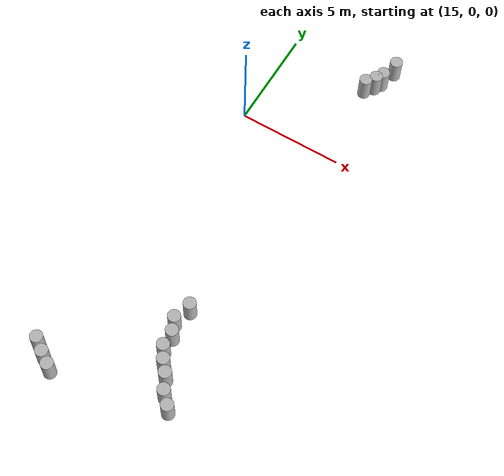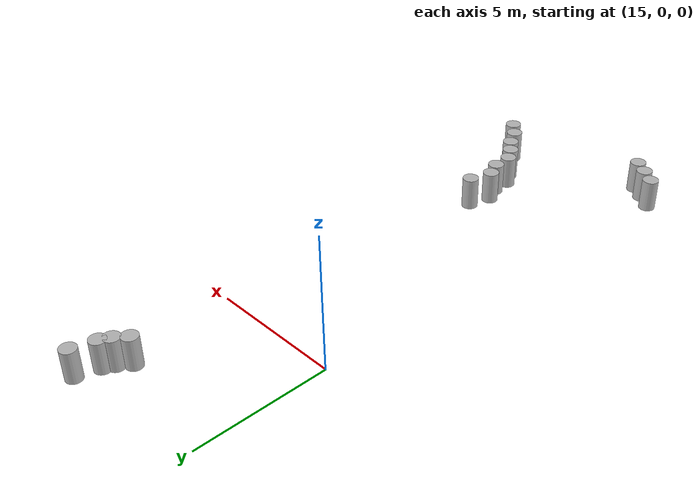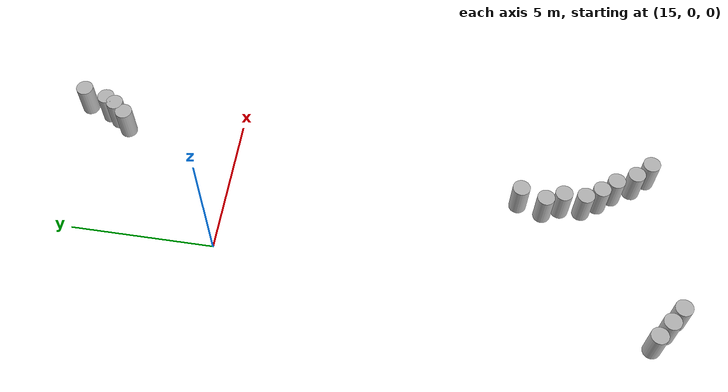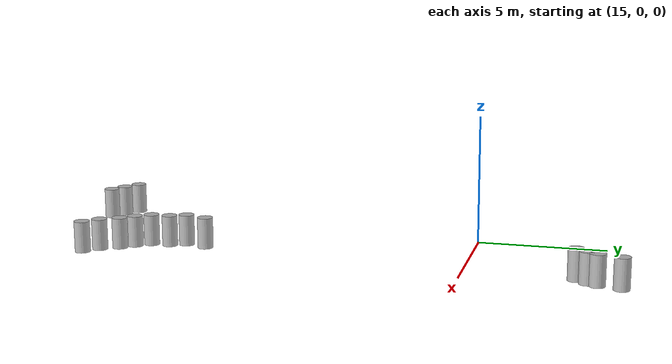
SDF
<sdf version="1.6">
 <world name="default">
  <model name="Construction Barrel_clone">
   <link name="link">
    <inertial>
     <pose>0 0 0.5 0 -0 0</pose>
     <mass>500</mass>
     <inertia><ixx>51.2096</ixx><iyy>51.2096</iyy><izz>25</izz><ixy>0</ixy><ixz>0</ixz><iyz>0</iyz></inertia>
    </inertial>
    <collision name="collision">
     <geometry><cylinder><radius>0.3</radius><length>1.2</length></cylinder></geometry>
    </collision>
    <visual name="visual">
     <geometry><cylinder><radius>0.3</radius><length>1.2</length></cylinder></geometry>
     <material>
      <script>
       <uri>model://construction_barrel/materials/scripts</uri>
       <uri>model://construction_barrel/materials/textures</uri>
       <name>construction_barrel/Image</name>
      </script>
     </material>
    </visual>
    <velocity_decay><linear>0</linear><angular>0</angular></velocity_decay>
   </link>
   <pose>13.4752 -14.8482 0.613748 0 -0 0</pose>
   <static>1</static>
  </model>
  <model name="Construction Barrel_clone_clone">
   <link name="link">
    <inertial>
     <pose>0 0 0.5 0 -0 0</pose>
     <mass>500</mass>
     <inertia><ixx>51.2096</ixx><iyy>51.2096</iyy><izz>25</izz><ixy>0</ixy><ixz>0</ixz><iyz>0</iyz></inertia>
    </inertial>
    <collision name="collision">
     <geometry><cylinder><radius>0.3</radius><length>1.2</length></cylinder></geometry>
    </collision>
    <visual name="visual">
     <geometry><cylinder><radius>0.3</radius><length>1.2</length></cylinder></geometry>
     <material>
      <script>
       <uri>model://construction_barrel/materials/scripts</uri>
       <uri>model://construction_barrel/materials/textures</uri>
       <name>construction_barrel/Image</name>
      </script>
     </material>
    </visual>
    <velocity_decay><linear>0</linear><angular>0</angular></velocity_decay>
   </link>
   <pose>14.0298 -15.2523 0.613748 0 -0 0</pose>
   <static>1</static>
  </model>
  <model name="Construction Barrel_clone_clone_clone">
   <link name="link">
    <inertial>
     <pose>0 0 0.5 0 -0 0</pose>
     <mass>500</mass>
     <inertia><ixx>51.2096</ixx><iyy>51.2096</iyy><izz>25</izz><ixy>0</ixy><ixz>0</ixz><iyz>0</iyz></inertia>
    </inertial>
    <collision name="collision">
     <geometry><cylinder><radius>0.3</radius><length>1.2</length></cylinder></geometry>
    </collision>
    <visual name="visual">
     <geometry><cylinder><radius>0.3</radius><length>1.2</length></cylinder></geometry>
     <material>
      <script>
       <uri>model://construction_barrel/materials/scripts</uri>
       <uri>model://construction_barrel/materials/textures</uri>
       <name>construction_barrel/Image</name>
      </script>
     </material>
    </visual>
    <velocity_decay><linear>0</linear><angular>0</angular></velocity_decay>
   </link>
   <pose>14.5642 -15.6098 0.613748 0 -0 0</pose>
   <static>1</static>
  </model>
  <model name="Construction Barrel_clone_clone_clone_9">
   <link name="link">
    <inertial>
     <pose>0 0 0.5 0 -0 0</pose>
     <mass>500</mass>
     <inertia><ixx>51.2096</ixx><iyy>51.2096</iyy><izz>25</izz><ixy>0</ixy><ixz>0</ixz><iyz>0</iyz></inertia>
    </inertial>
    <collision name="collision">
     <geometry><cylinder><radius>0.3</radius><length>1.2</length></cylinder></geometry>
    </collision>
    <visual name="visual">
     <geometry><cylinder><radius>0.3</radius><length>1.2</length></cylinder></geometry>
     <material>
      <script>
       <uri>model://construction_barrel/materials/scripts</uri>
       <uri>model://construction_barrel/materials/textures</uri>
       <name>construction_barrel/Image</name>
      </script>
     </material>
    </visual>
    <velocity_decay><linear>0</linear><angular>0</angular></velocity_decay>
   </link>
   <pose>19.8977 -14.5219 0.613748 0 -0 0</pose>
   <static>1</static>
  </model>
  <model name="Construction Barrel_clone_clone_clone_10">
   <link name="link">
    <inertial>
     <pose>0 0 0.5 0 -0 0</pose>
     <mass>500</mass>
     <inertia><ixx>51.2096</ixx><iyy>51.2096</iyy><izz>25</izz><ixy>0</ixy><ixz>0</ixz><iyz>0</iyz></inertia>
    </inertial>
    <collision name="collision">
     <geometry><cylinder><radius>0.3</radius><length>1.2</length></cylinder></geometry>
    </collision>
    <visual name="visual">
     <geometry><cylinder><radius>0.3</radius><length>1.2</length></cylinder></geometry>
     <material>
      <script>
       <uri>model://construction_barrel/materials/scripts</uri>
       <uri>model://construction_barrel/materials/textures</uri>
       <name>construction_barrel/Image</name>
      </script>
     </material>
    </visual>
    <velocity_decay><linear>0</linear><angular>0</angular></velocity_decay>
   </link>
   <pose>19.4094 -14.0229 0.613748 0 -0 0</pose>
   <static>1</static>
  </model>
  <model name="Construction Barrel_clone_clone_clone_11">
   <link name="link">
    <inertial>
     <pose>0 0 0.5 0 -0 0</pose>
     <mass>500</mass>
     <inertia><ixx>51.2096</ixx><iyy>51.2096</iyy><izz>25</izz><ixy>0</ixy><ixz>0</ixz><iyz>0</iyz></inertia>
    </inertial>
    <collision name="collision">
     <geometry><cylinder><radius>0.3</radius><length>1.2</length></cylinder></geometry>
    </collision>
    <visual name="visual">
     <geometry><cylinder><radius>0.3</radius><length>1.2</length></cylinder></geometry>
     <material>
      <script>
       <uri>model://construction_barrel/materials/scripts</uri>
       <uri>model://construction_barrel/materials/textures</uri>
       <name>construction_barrel/Image</name>
      </script>
     </material>
    </visual>
    <velocity_decay><linear>0</linear><angular>0</angular></velocity_decay>
   </link>
   <pose>19.038 -13.3491 0.613748 0 -0 0</pose>
   <static>1</static>
  </model>
  <model name="Construction Barrel_clone_clone_clone_12">
   <link name="link">
    <inertial>
     <pose>0 0 0.5 0 -0 0</pose>
     <mass>500</mass>
     <inertia><ixx>51.2096</ixx><iyy>51.2096</iyy><izz>25</izz><ixy>0</ixy><ixz>0</ixz><iyz>0</iyz></inertia>
    </inertial>
    <collision name="collision">
     <geometry><cylinder><radius>0.3</radius><length>1.2</length></cylinder></geometry>
    </collision>
    <visual name="visual">
     <geometry><cylinder><radius>0.3</radius><length>1.2</length></cylinder></geometry>
     <material>
      <script>
       <uri>model://construction_barrel/materials/scripts</uri>
       <uri>model://construction_barrel/materials/textures</uri>
       <name>construction_barrel/Image</name>
      </script>
     </material>
    </visual>
    <velocity_decay><linear>0</linear><angular>0</angular></velocity_decay>
   </link>
   <pose>18.6343 -12.8695 0.613748 0 -0 0</pose>
   <static>1</static>
  </model>
  <model name="Construction Barrel_clone_clone_clone_13">
   <link name="link">
    <inertial>
     <pose>0 0 0.5 0 -0 0</pose>
     <mass>500</mass>
     <inertia><ixx>51.2096</ixx><iyy>51.2096</iyy><izz>25</izz><ixy>0</ixy><ixz>0</ixz><iyz>0</iyz></inertia>
    </inertial>
    <collision name="collision">
     <geometry><cylinder><radius>0.3</radius><length>1.2</length></cylinder></geometry>
    </collision>
    <visual name="visual">
     <geometry><cylinder><radius>0.3</radius><length>1.2</length></cylinder></geometry>
     <material>
      <script>
       <uri>model://construction_barrel/materials/scripts</uri>
       <uri>model://construction_barrel/materials/textures</uri>
       <name>construction_barrel/Image</name>
      </script>
     </material>
    </visual>
    <velocity_decay><linear>0</linear><angular>0</angular></velocity_decay>
   </link>
   <pose>18.2908 -12.3361 0.613748 0 -0 0</pose>
   <static>1</static>
  </model>
  <model name="Construction Barrel_clone_clone_clone_14">
   <link name="link">
    <inertial>
     <pose>0 0 0.5 0 -0 0</pose>
     <mass>500</mass>
     <inertia><ixx>51.2096</ixx><iyy>51.2096</iyy><izz>25</izz><ixy>0</ixy><ixz>0</ixz><iyz>0</iyz></inertia>
    </inertial>
    <collision name="collision">
     <geometry><cylinder><radius>0.3</radius><length>1.2</length></cylinder></geometry>
    </collision>
    <visual name="visual">
     <geometry><cylinder><radius>0.3</radius><length>1.2</length></cylinder></geometry>
     <material>
      <script>
       <uri>model://construction_barrel/materials/scripts</uri>
       <uri>model://construction_barrel/materials/textures</uri>
       <name>construction_barrel/Image</name>
      </script>
     </material>
    </visual>
    <velocity_decay><linear>0</linear><angular>0</angular></velocity_decay>
   </link>
   <pose>18.2654 -11.5973 0.613748 0 -0 0</pose>
   <static>1</static>
  </model>
  <model name="Construction Barrel_clone_clone_clone_15">
   <link name="link">
    <inertial>
     <pose>0 0 0.5 0 -0 0</pose>
     <mass>500</mass>
     <inertia><ixx>51.2096</ixx><iyy>51.2096</iyy><izz>25</izz><ixy>0</ixy><ixz>0</ixz><iyz>0</iyz></inertia>
    </inertial>
    <collision name="collision">
     <geometry><cylinder><radius>0.3</radius><length>1.2</length></cylinder></geometry>
    </collision>
    <visual name="visual">
     <geometry><cylinder><radius>0.3</radius><length>1.2</length></cylinder></geometry>
     <material>
      <script>
       <uri>model://construction_barrel/materials/scripts</uri>
       <uri>model://construction_barrel/materials/textures</uri>
       <name>construction_barrel/Image</name>
      </script>
     </material>
    </visual>
    <velocity_decay><linear>0</linear><angular>0</angular></velocity_decay>
   </link>
   <pose>18 -11 0.613748 0 -0 0</pose>
   <static>1</static>
  </model>
  <model name="Construction Barrel_clone_clone_clone_16">
   <link name="link">
    <inertial>
     <pose>0 0 0.5 0 -0 0</pose>
     <mass>500</mass>
     <inertia><ixx>51.2096</ixx><iyy>51.2096</iyy><izz>25</izz><ixy>0</ixy><ixz>0</ixz><iyz>0</iyz></inertia>
    </inertial>
    <collision name="collision">
     <geometry><cylinder><radius>0.3</radius><length>1.2</length></cylinder></geometry>
    </collision>
    <visual name="visual">
     <geometry><cylinder><radius>0.3</radius><length>1.2</length></cylinder></geometry>
     <material>
      <script>
       <uri>model://construction_barrel/materials/scripts</uri>
       <uri>model://construction_barrel/materials/textures</uri>
       <name>construction_barrel/Image</name>
      </script>
     </material>
    </visual>
    <velocity_decay><linear>0</linear><angular>0</angular></velocity_decay>
   </link>
   <pose>18.2558 -10.1466 0.613748 0 -0 0</pose>
   <static>1</static>
  </model>
  <model name="Construction Barrel_clone_clone_clone_17">
   <link name="link">
    <inertial>
     <pose>0 0 0.5 0 -0 0</pose>
     <mass>500</mass>
     <inertia><ixx>51.2096</ixx><iyy>51.2096</iyy><izz>25</izz><ixy>0</ixy><ixz>0</ixz><iyz>0</iyz></inertia>
    </inertial>
    <collision name="collision">
     <geometry><cylinder><radius>0.3</radius><length>1.2</length></cylinder></geometry>
    </collision>
    <visual name="visual">
     <geometry><cylinder><radius>0.3</radius><length>1.2</length></cylinder></geometry>
     <material>
      <script>
       <uri>model://construction_barrel/materials/scripts</uri>
       <uri>model://construction_barrel/materials/textures</uri>
       <name>construction_barrel/Image</name>
      </script>
     </material>
    </visual>
    <velocity_decay><linear>0</linear><angular>0</angular></velocity_decay>
   </link>
   <pose>19.2662 4.11274 0.613748 0 -0 0</pose>
   <static>1</static>
  </model>
  <model name="Construction Barrel_clone_clone_clone_18">
   <link name="link">
    <inertial>
     <pose>0 0 0.5 0 -0 0</pose>
     <mass>500</mass>
     <inertia><ixx>51.2096</ixx><iyy>51.2096</iyy><izz>25</izz><ixy>0</ixy><ixz>0</ixz><iyz>0</iyz></inertia>
    </inertial>
    <collision name="collision">
     <geometry><cylinder><radius>0.3</radius><length>1.2</length></cylinder></geometry>
    </collision>
    <visual name="visual">
     <geometry><cylinder><radius>0.3</radius><length>1.2</length></cylinder></geometry>
     <material>
      <script>
       <uri>model://construction_barrel/materials/scripts</uri>
       <uri>model://construction_barrel/materials/textures</uri>
       <name>construction_barrel/Image</name>
      </script>
     </material>
    </visual>
    <velocity_decay><linear>0</linear><angular>0</angular></velocity_decay>
   </link>
   <pose>19.6062 4.53682 0.613748 0 -0 0</pose>
   <static>1</static>
  </model>
  <model name="Construction Barrel_clone_clone_clone_19">
   <link name="link">
    <inertial>
     <pose>0 0 0.5 0 -0 0</pose>
     <mass>500</mass>
     <inertia><ixx>51.2096</ixx><iyy>51.2096</iyy><izz>25</izz><ixy>0</ixy><ixz>0</ixz><iyz>0</iyz></inertia>
    </inertial>
    <collision name="collision">
     <geometry><cylinder><radius>0.3</radius><length>1.2</length></cylinder></geometry>
    </collision>
    <visual name="visual">
     <geometry><cylinder><radius>0.3</radius><length>1.2</length></cylinder></geometry>
     <material>
      <script>
       <uri>model://construction_barrel/materials/scripts</uri>
       <uri>model://construction_barrel/materials/textures</uri>
       <name>construction_barrel/Image</name>
      </script>
     </material>
    </visual>
    <velocity_decay><linear>0</linear><angular>0</angular></velocity_decay>
   </link>
   <pose>19.8065 4.9071 0.613748 0 -0 0</pose>
   <static>1</static>
  </model>
  <model name="Construction Barrel_clone_clone_clone_20">
   <link name="link">
    <inertial>
     <pose>0 0 0.5 0 -0 0</pose>
     <mass>500</mass>
     <inertia><ixx>51.2096</ixx><iyy>51.2096</iyy><izz>25</izz><ixy>0</ixy><ixz>0</ixz><iyz>0</iyz></inertia>
    </inertial>
    <collision name="collision">
     <geometry><cylinder><radius>0.3</radius><length>1.2</length></cylinder></geometry>
    </collision>
    <visual name="visual">
     <geometry><cylinder><radius>0.3</radius><length>1.2</length></cylinder></geometry>
     <material>
      <script>
       <uri>model://construction_barrel/materials/scripts</uri>
       <uri>model://construction_barrel/materials/textures</uri>
       <name>construction_barrel/Image</name>
      </script>
     </material>
    </visual>
    <velocity_decay><linear>0</linear><angular>0</angular></velocity_decay>
   </link>
   <pose>20.0502 5.76608 0.613748 0 -0 0</pose>
   <static>1</static>
  </model>
 </world>
</sdf>
